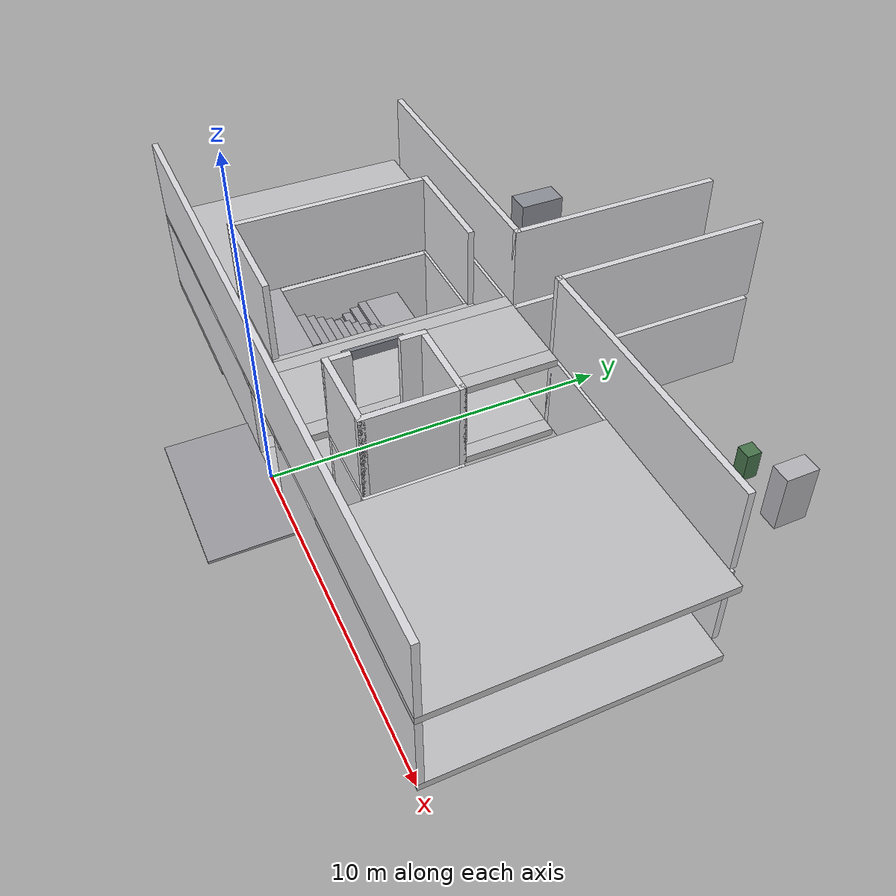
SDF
<sdf version="1.7">
 <model name="generated_building">
  <static>true</static>
  <link name="entrance_apron">
   <pose>0.0000 -1.2000 0.0400 0.0000 0.0000 0.0000</pose>
   <collision name="entrance_apron_collision">
    <geometry><box><size>4.5000 2.4000 0.0800</size></box></geometry>
   </collision>
   <visual name="entrance_apron_visual">
    <geometry><box><size>4.5000 2.4000 0.0800</size></box></geometry>
    <material><ambient>0.62 0.62 0.64 1</ambient><diffuse>0.62 0.62 0.64 1</diffuse></material>
   </visual>
   <gravity>false</gravity>
  </link>
  <link name="slab_floor_0_1">
   <pose>-7.4700 3.9250 -0.1100 0.0000 0.0000 0.0000</pose>
   <collision name="slab_floor_0_1_collision">
    <geometry><box><size>5.0600 7.8500 0.2200</size></box></geometry>
   </collision>
   <visual name="slab_floor_0_1_visual">
    <geometry><box><size>5.0600 7.8500 0.2200</size></box></geometry>
    <material><ambient>0.76 0.76 0.77 1</ambient><diffuse>0.76 0.76 0.77 1</diffuse></material>
   </visual>
   <gravity>false</gravity>
  </link>
  <link name="slab_floor_0_2">
   <pose>-1.3300 3.9250 -0.1100 0.0000 0.0000 0.0000</pose>
   <collision name="slab_floor_0_2_collision">
    <geometry><box><size>0.4600 7.8500 0.2200</size></box></geometry>
   </collision>
   <visual name="slab_floor_0_2_visual">
    <geometry><box><size>0.4600 7.8500 0.2200</size></box></geometry>
    <material><ambient>0.76 0.76 0.77 1</ambient><diffuse>0.76 0.76 0.77 1</diffuse></material>
   </visual>
   <gravity>false</gravity>
  </link>
  <link name="slab_floor_0_3">
   <pose>0.0000 3.9250 -0.1100 0.0000 0.0000 0.0000</pose>
   <collision name="slab_floor_0_3_collision">
    <geometry><box><size>2.2000 7.8500 0.2200</size></box></geometry>
   </collision>
   <visual name="slab_floor_0_3_visual">
    <geometry><box><size>2.2000 7.8500 0.2200</size></box></geometry>
    <material><ambient>0.76 0.76 0.77 1</ambient><diffuse>0.76 0.76 0.77 1</diffuse></material>
   </visual>
   <gravity>false</gravity>
  </link>
  <link name="slab_floor_0_4">
   <pose>1.3300 3.9250 -0.1100 0.0000 0.0000 0.0000</pose>
   <collision name="slab_floor_0_4_collision">
    <geometry><box><size>0.4600 7.8500 0.2200</size></box></geometry>
   </collision>
   <visual name="slab_floor_0_4_visual">
    <geometry><box><size>0.4600 7.8500 0.2200</size></box></geometry>
    <material><ambient>0.76 0.76 0.77 1</ambient><diffuse>0.76 0.76 0.77 1</diffuse></material>
   </visual>
   <gravity>false</gravity>
  </link>
  <link name="slab_floor_0_5">
   <pose>7.0700 3.9250 -0.1100 0.0000 0.0000 0.0000</pose>
   <collision name="slab_floor_0_5_collision">
    <geometry><box><size>5.8600 7.8500 0.2200</size></box></geometry>
   </collision>
   <visual name="slab_floor_0_5_visual">
    <geometry><box><size>5.8600 7.8500 0.2200</size></box></geometry>
    <material><ambient>0.76 0.76 0.77 1</ambient><diffuse>0.76 0.76 0.77 1</diffuse></material>
   </visual>
   <gravity>false</gravity>
  </link>
  <link name="stair_edge_infill_floor_0">
   <pose>-1.6500 3.8500 -0.1100 0.0000 0.0000 0.0000</pose>
   <collision name="stair_edge_infill_floor_0_collision">
    <geometry><box><size>0.1800 6.0000 0.2200</size></box></geometry>
   </collision>
   <visual name="stair_edge_infill_floor_0_visual">
    <geometry><box><size>0.1800 6.0000 0.2200</size></box></geometry>
    <material><ambient>0.76 0.76 0.77 1</ambient><diffuse>0.76 0.76 0.77 1</diffuse></material>
   </visual>
   <gravity>false</gravity>
  </link>
  <link name="exterior_south_entrance_left">
   <pose>-5.5100 0.0900 1.2250 0.0000 0.0000 0.0000</pose>
   <collision name="exterior_south_entrance_left_collision">
    <geometry><box><size>8.9800 0.1800 2.4500</size></box></geometry>
   </collision>
   <visual name="exterior_south_entrance_left_visual">
    <geometry><box><size>8.9800 0.1800 2.4500</size></box></geometry>
    <material><ambient>0.86 0.86 0.88 1</ambient><diffuse>0.86 0.86 0.88 1</diffuse></material>
   </visual>
   <gravity>false</gravity>
  </link>
  <link name="exterior_south_entrance_right">
   <pose>5.5100 0.0900 1.2250 0.0000 0.0000 0.0000</pose>
   <collision name="exterior_south_entrance_right_collision">
    <geometry><box><size>8.9800 0.1800 2.4500</size></box></geometry>
   </collision>
   <visual name="exterior_south_entrance_right_visual">
    <geometry><box><size>8.9800 0.1800 2.4500</size></box></geometry>
    <material><ambient>0.86 0.86 0.88 1</ambient><diffuse>0.86 0.86 0.88 1</diffuse></material>
   </visual>
   <gravity>false</gravity>
  </link>
  <link name="floor_0_room_0_corridor_wall_lower">
   <pose>-1.1900 11.0575 1.2250 0.0000 0.0000 0.0000</pose>
   <collision name="floor_0_room_0_corridor_wall_lower_collision">
    <geometry><box><size>0.1800 6.4150 2.4500</size></box></geometry>
   </collision>
   <visual name="floor_0_room_0_corridor_wall_lower_visual">
    <geometry><box><size>0.1800 6.4150 2.4500</size></box></geometry>
    <material><ambient>0.86 0.86 0.88 1</ambient><diffuse>0.86 0.86 0.88 1</diffuse></material>
   </visual>
   <gravity>false</gravity>
  </link>
  <link name="floor_0_room_0_south_wall">
   <pose>-5.3000 7.9400 1.2250 0.0000 0.0000 0.0000</pose>
   <collision name="floor_0_room_0_south_wall_collision">
    <geometry><box><size>8.4000 0.1800 2.4500</size></box></geometry>
   </collision>
   <visual name="floor_0_room_0_south_wall_visual">
    <geometry><box><size>8.4000 0.1800 2.4500</size></box></geometry>
    <material><ambient>0.86 0.86 0.88 1</ambient><diffuse>0.86 0.86 0.88 1</diffuse></material>
   </visual>
   <gravity>false</gravity>
  </link>
  <link name="floor_0_room_1_corridor_wall_lower">
   <pose>1.1900 11.0575 1.2250 0.0000 0.0000 0.0000</pose>
   <collision name="floor_0_room_1_corridor_wall_lower_collision">
    <geometry><box><size>0.1800 6.4150 2.4500</size></box></geometry>
   </collision>
   <visual name="floor_0_room_1_corridor_wall_lower_visual">
    <geometry><box><size>0.1800 6.4150 2.4500</size></box></geometry>
    <material><ambient>0.86 0.86 0.88 1</ambient><diffuse>0.86 0.86 0.88 1</diffuse></material>
   </visual>
   <gravity>false</gravity>
  </link>
  <link name="floor_0_room_1_south_wall">
   <pose>5.3000 7.9400 1.2250 0.0000 0.0000 0.0000</pose>
   <collision name="floor_0_room_1_south_wall_collision">
    <geometry><box><size>8.4000 0.1800 2.4500</size></box></geometry>
   </collision>
   <visual name="floor_0_room_1_south_wall_visual">
    <geometry><box><size>8.4000 0.1800 2.4500</size></box></geometry>
    <material><ambient>0.86 0.86 0.88 1</ambient><diffuse>0.86 0.86 0.88 1</diffuse></material>
   </visual>
   <gravity>false</gravity>
  </link>
  <link name="stair_core_floor_0_west">
   <pose>-4.7600 3.8500 1.2250 0.0000 0.0000 0.0000</pose>
   <collision name="stair_core_floor_0_west_collision">
    <geometry><box><size>0.1800 6.0000 2.4500</size></box></geometry>
   </collision>
   <visual name="stair_core_floor_0_west_visual">
    <geometry><box><size>0.1800 6.0000 2.4500</size></box></geometry>
    <material><ambient>0.86 0.86 0.88 1</ambient><diffuse>0.86 0.86 0.88 1</diffuse></material>
   </visual>
   <gravity>false</gravity>
  </link>
  <link name="stair_core_floor_0_south">
   <pose>-3.2500 0.9400 1.2250 0.0000 0.0000 0.0000</pose>
   <collision name="stair_core_floor_0_south_collision">
    <geometry><box><size>3.2000 0.1800 2.4500</size></box></geometry>
   </collision>
   <visual name="stair_core_floor_0_south_visual">
    <geometry><box><size>3.2000 0.1800 2.4500</size></box></geometry>
    <material><ambient>0.86 0.86 0.88 1</ambient><diffuse>0.86 0.86 0.88 1</diffuse></material>
   </visual>
   <gravity>false</gravity>
  </link>
  <link name="stair_core_floor_0_north">
   <pose>-3.2500 6.7600 1.2250 0.0000 0.0000 0.0000</pose>
   <collision name="stair_core_floor_0_north_collision">
    <geometry><box><size>3.2000 0.1800 2.4500</size></box></geometry>
   </collision>
   <visual name="stair_core_floor_0_north_visual">
    <geometry><box><size>3.2000 0.1800 2.4500</size></box></geometry>
    <material><ambient>0.86 0.86 0.88 1</ambient><diffuse>0.86 0.86 0.88 1</diffuse></material>
   </visual>
   <gravity>false</gravity>
  </link>
  <link name="elevator_core_floor_0_west_lower">
   <pose>1.7400 1.6150 1.2250 0.0000 0.0000 0.0000</pose>
   <collision name="elevator_core_floor_0_west_lower_collision">
    <geometry><box><size>0.1800 0.7300 2.4500</size></box></geometry>
   </collision>
   <visual name="elevator_core_floor_0_west_lower_visual">
    <geometry><box><size>0.1800 0.7300 2.4500</size></box></geometry>
    <material><ambient>0.86 0.86 0.88 1</ambient><diffuse>0.86 0.86 0.88 1</diffuse></material>
   </visual>
   <gravity>false</gravity>
  </link>
  <link name="elevator_core_floor_0_west_upper">
   <pose>1.7400 3.5850 1.2250 0.0000 0.0000 0.0000</pose>
   <collision name="elevator_core_floor_0_west_upper_collision">
    <geometry><box><size>0.1800 0.7300 2.4500</size></box></geometry>
   </collision>
   <visual name="elevator_core_floor_0_west_upper_visual">
    <geometry><box><size>0.1800 0.7300 2.4500</size></box></geometry>
    <material><ambient>0.86 0.86 0.88 1</ambient><diffuse>0.86 0.86 0.88 1</diffuse></material>
   </visual>
   <gravity>false</gravity>
  </link>
  <link name="elevator_core_floor_0_east">
   <pose>3.9600 2.6000 1.2250 0.0000 0.0000 0.0000</pose>
   <collision name="elevator_core_floor_0_east_collision">
    <geometry><box><size>0.1800 2.7000 2.4500</size></box></geometry>
   </collision>
   <visual name="elevator_core_floor_0_east_visual">
    <geometry><box><size>0.1800 2.7000 2.4500</size></box></geometry>
    <material><ambient>0.86 0.86 0.88 1</ambient><diffuse>0.86 0.86 0.88 1</diffuse></material>
   </visual>
   <gravity>false</gravity>
  </link>
  <link name="elevator_core_floor_0_south">
   <pose>2.8500 1.3400 1.2250 0.0000 0.0000 0.0000</pose>
   <collision name="elevator_core_floor_0_south_collision">
    <geometry><box><size>2.4000 0.1800 2.4500</size></box></geometry>
   </collision>
   <visual name="elevator_core_floor_0_south_visual">
    <geometry><box><size>2.4000 0.1800 2.4500</size></box></geometry>
    <material><ambient>0.86 0.86 0.88 1</ambient><diffuse>0.86 0.86 0.88 1</diffuse></material>
   </visual>
   <gravity>false</gravity>
  </link>
  <link name="elevator_core_floor_0_north">
   <pose>2.8500 3.8600 1.2250 0.0000 0.0000 0.0000</pose>
   <collision name="elevator_core_floor_0_north_collision">
    <geometry><box><size>2.4000 0.1800 2.4500</size></box></geometry>
   </collision>
   <visual name="elevator_core_floor_0_north_visual">
    <geometry><box><size>2.4000 0.1800 2.4500</size></box></geometry>
    <material><ambient>0.86 0.86 0.88 1</ambient><diffuse>0.86 0.86 0.88 1</diffuse></material>
   </visual>
   <gravity>false</gravity>
  </link>
  <link name="elevator_threshold_floor_0">
   <pose>1.5400 2.6000 0.0300 0.0000 0.0000 0.0000</pose>
   <collision name="elevator_threshold_floor_0_collision">
    <geometry><box><size>0.2200 1.5000 0.0600</size></box></geometry>
   </collision>
   <visual name="elevator_threshold_floor_0_visual">
    <geometry><box><size>0.2200 1.5000 0.0600</size></box></geometry>
    <material><ambient>0.50 0.51 0.54 1</ambient><diffuse>0.50 0.51 0.54 1</diffuse></material>
   </visual>
   <gravity>false</gravity>
  </link>
  <link name="elevator_sill_infill_floor_0">
   <pose>1.6750 2.6000 -0.1100 0.0000 0.0000 0.0000</pose>
   <collision name="elevator_sill_infill_floor_0_collision">
    <geometry><box><size>0.0500 2.5200 0.2200</size></box></geometry>
   </collision>
   <visual name="elevator_sill_infill_floor_0_visual">
    <geometry><box><size>0.0500 2.5200 0.2200</size></box></geometry>
    <material><ambient>0.72 0.72 0.73 1</ambient><diffuse>0.72 0.72 0.73 1</diffuse></material>
   </visual>
   <gravity>false</gravity>
  </link>
  <link name="elevator_header_floor_0">
   <pose>1.5900 2.6000 2.2600 0.0000 0.0000 0.0000</pose>
   <collision name="elevator_header_floor_0_collision">
    <geometry><box><size>0.1200 1.6000 0.2800</size></box></geometry>
   </collision>
   <visual name="elevator_header_floor_0_visual">
    <geometry><box><size>0.1200 1.6000 0.2800</size></box></geometry>
    <material><ambient>0.50 0.51 0.54 1</ambient><diffuse>0.50 0.51 0.54 1</diffuse></material>
   </visual>
   <gravity>false</gravity>
  </link>
  <link name="elevator_jamb_left_floor_0">
   <pose>1.5900 1.8500 1.1000 0.0000 0.0000 0.0000</pose>
   <collision name="elevator_jamb_left_floor_0_collision">
    <geometry><box><size>0.1200 0.1000 2.2000</size></box></geometry>
   </collision>
   <visual name="elevator_jamb_left_floor_0_visual">
    <geometry><box><size>0.1200 0.1000 2.2000</size></box></geometry>
    <material><ambient>0.50 0.51 0.54 1</ambient><diffuse>0.50 0.51 0.54 1</diffuse></material>
   </visual>
   <gravity>false</gravity>
  </link>
  <link name="elevator_jamb_right_floor_0">
   <pose>1.5900 3.3500 1.1000 0.0000 0.0000 0.0000</pose>
   <collision name="elevator_jamb_right_floor_0_collision">
    <geometry><box><size>0.1200 0.1000 2.2000</size></box></geometry>
   </collision>
   <visual name="elevator_jamb_right_floor_0_visual">
    <geometry><box><size>0.1200 0.1000 2.2000</size></box></geometry>
    <material><ambient>0.50 0.51 0.54 1</ambient><diffuse>0.50 0.51 0.54 1</diffuse></material>
   </visual>
   <gravity>false</gravity>
  </link>
  <link name="elevator_call_panel_floor_0">
   <pose>1.5700 3.5800 1.2000 0.0000 0.0000 0.0000</pose>
   <collision name="elevator_call_panel_floor_0_collision">
    <geometry><box><size>0.0800 0.2200 0.3200</size></box></geometry>
   </collision>
   <visual name="elevator_call_panel_floor_0_visual">
    <geometry><box><size>0.0800 0.2200 0.3200</size></box></geometry>
    <material><ambient>0.20 0.20 0.24 1</ambient><diffuse>0.20 0.20 0.24 1</diffuse></material>
   </visual>
   <gravity>false</gravity>
  </link>
  <link name="floor_0_room_0_rack_c">
   <pose>-7.0000 11.8075 0.9000 0.0000 0.0000 0.0000</pose>
   <collision name="floor_0_room_0_rack_c_collision">
    <geometry><box><size>0.8000 1.5000 1.8000</size></box></geometry>
   </collision>
   <visual name="floor_0_room_0_rack_c_visual">
    <geometry><box><size>0.8000 1.5000 1.8000</size></box></geometry>
    <material><ambient>0.56 0.57 0.60 1</ambient><diffuse>0.56 0.57 0.60 1</diffuse></material>
   </visual>
   <gravity>false</gravity>
  </link>
  <link name="floor_0_room_0_pallet">
   <pose>-3.6000 11.8075 0.1200 0.0000 0.0000 0.0000</pose>
   <collision name="floor_0_room_0_pallet_collision">
    <geometry><box><size>1.0000 1.0000 0.2400</size></box></geometry>
   </collision>
   <visual name="floor_0_room_0_pallet_visual">
    <geometry><box><size>1.0000 1.0000 0.2400</size></box></geometry>
    <material><ambient>0.56 0.44 0.28 1</ambient><diffuse>0.56 0.44 0.28 1</diffuse></material>
   </visual>
   <gravity>false</gravity>
  </link>
  <link name="floor_0_room_1_cabinet">
   <pose>7.0000 11.8075 0.9000 0.0000 0.0000 0.0000</pose>
   <collision name="floor_0_room_1_cabinet_collision">
    <geometry><box><size>0.6000 1.0000 1.8000</size></box></geometry>
   </collision>
   <visual name="floor_0_room_1_cabinet_visual">
    <geometry><box><size>0.6000 1.0000 1.8000</size></box></geometry>
    <material><ambient>0.72 0.72 0.74 1</ambient><diffuse>0.72 0.72 0.74 1</diffuse></material>
   </visual>
   <gravity>false</gravity>
  </link>
  <link name="floor_0_room_1_planter">
   <pose>5.3000 11.8075 0.4500 0.0000 0.0000 0.0000</pose>
   <collision name="floor_0_room_1_planter_collision">
    <geometry><box><size>0.4500 0.4500 0.9000</size></box></geometry>
   </collision>
   <visual name="floor_0_room_1_planter_visual">
    <geometry><box><size>0.4500 0.4500 0.9000</size></box></geometry>
    <material><ambient>0.28 0.46 0.30 1</ambient><diffuse>0.28 0.46 0.30 1</diffuse></material>
   </visual>
   <gravity>false</gravity>
  </link>
  <link name="slab_floor_1_1">
   <pose>-7.4700 3.9250 2.4900 0.0000 0.0000 0.0000</pose>
   <collision name="slab_floor_1_1_collision">
    <geometry><box><size>5.0600 7.8500 0.2200</size></box></geometry>
   </collision>
   <visual name="slab_floor_1_1_visual">
    <geometry><box><size>5.0600 7.8500 0.2200</size></box></geometry>
    <material><ambient>0.76 0.76 0.77 1</ambient><diffuse>0.76 0.76 0.77 1</diffuse></material>
   </visual>
   <gravity>false</gravity>
  </link>
  <link name="slab_floor_1_2">
   <pose>-1.3300 3.9250 2.4900 0.0000 0.0000 0.0000</pose>
   <collision name="slab_floor_1_2_collision">
    <geometry><box><size>0.4600 7.8500 0.2200</size></box></geometry>
   </collision>
   <visual name="slab_floor_1_2_visual">
    <geometry><box><size>0.4600 7.8500 0.2200</size></box></geometry>
    <material><ambient>0.76 0.76 0.77 1</ambient><diffuse>0.76 0.76 0.77 1</diffuse></material>
   </visual>
   <gravity>false</gravity>
  </link>
  <link name="slab_floor_1_3">
   <pose>0.0000 3.9250 2.4900 0.0000 0.0000 0.0000</pose>
   <collision name="slab_floor_1_3_collision">
    <geometry><box><size>2.2000 7.8500 0.2200</size></box></geometry>
   </collision>
   <visual name="slab_floor_1_3_visual">
    <geometry><box><size>2.2000 7.8500 0.2200</size></box></geometry>
    <material><ambient>0.76 0.76 0.77 1</ambient><diffuse>0.76 0.76 0.77 1</diffuse></material>
   </visual>
   <gravity>false</gravity>
  </link>
  <link name="slab_floor_1_4">
   <pose>1.3300 3.9250 2.4900 0.0000 0.0000 0.0000</pose>
   <collision name="slab_floor_1_4_collision">
    <geometry><box><size>0.4600 7.8500 0.2200</size></box></geometry>
   </collision>
   <visual name="slab_floor_1_4_visual">
    <geometry><box><size>0.4600 7.8500 0.2200</size></box></geometry>
    <material><ambient>0.76 0.76 0.77 1</ambient><diffuse>0.76 0.76 0.77 1</diffuse></material>
   </visual>
   <gravity>false</gravity>
  </link>
  <link name="slab_floor_1_5">
   <pose>7.0700 3.9250 2.4900 0.0000 0.0000 0.0000</pose>
   <collision name="slab_floor_1_5_collision">
    <geometry><box><size>5.8600 7.8500 0.2200</size></box></geometry>
   </collision>
   <visual name="slab_floor_1_5_visual">
    <geometry><box><size>5.8600 7.8500 0.2200</size></box></geometry>
    <material><ambient>0.76 0.76 0.77 1</ambient><diffuse>0.76 0.76 0.77 1</diffuse></material>
   </visual>
   <gravity>false</gravity>
  </link>
  <link name="stair_edge_infill_floor_1">
   <pose>-1.6500 3.8500 2.4900 0.0000 0.0000 0.0000</pose>
   <collision name="stair_edge_infill_floor_1_collision">
    <geometry><box><size>0.1800 6.0000 0.2200</size></box></geometry>
   </collision>
   <visual name="stair_edge_infill_floor_1_visual">
    <geometry><box><size>0.1800 6.0000 0.2200</size></box></geometry>
    <material><ambient>0.76 0.76 0.77 1</ambient><diffuse>0.76 0.76 0.77 1</diffuse></material>
   </visual>
   <gravity>false</gravity>
  </link>
  <link name="exterior_south_floor_1">
   <pose>0.0000 0.0900 3.8250 0.0000 0.0000 0.0000</pose>
   <collision name="exterior_south_floor_1_collision">
    <geometry><box><size>20.0000 0.1800 2.4500</size></box></geometry>
   </collision>
   <visual name="exterior_south_floor_1_visual">
    <geometry><box><size>20.0000 0.1800 2.4500</size></box></geometry>
    <material><ambient>0.86 0.86 0.88 1</ambient><diffuse>0.86 0.86 0.88 1</diffuse></material>
   </visual>
   <gravity>false</gravity>
  </link>
  <link name="floor_1_room_0_corridor_wall_lower">
   <pose>-1.1900 11.0575 3.8250 0.0000 0.0000 0.0000</pose>
   <collision name="floor_1_room_0_corridor_wall_lower_collision">
    <geometry><box><size>0.1800 6.4150 2.4500</size></box></geometry>
   </collision>
   <visual name="floor_1_room_0_corridor_wall_lower_visual">
    <geometry><box><size>0.1800 6.4150 2.4500</size></box></geometry>
    <material><ambient>0.86 0.86 0.88 1</ambient><diffuse>0.86 0.86 0.88 1</diffuse></material>
   </visual>
   <gravity>false</gravity>
  </link>
  <link name="floor_1_room_0_south_wall">
   <pose>-5.3000 7.9400 3.8250 0.0000 0.0000 0.0000</pose>
   <collision name="floor_1_room_0_south_wall_collision">
    <geometry><box><size>8.4000 0.1800 2.4500</size></box></geometry>
   </collision>
   <visual name="floor_1_room_0_south_wall_visual">
    <geometry><box><size>8.4000 0.1800 2.4500</size></box></geometry>
    <material><ambient>0.86 0.86 0.88 1</ambient><diffuse>0.86 0.86 0.88 1</diffuse></material>
   </visual>
   <gravity>false</gravity>
  </link>
  <link name="floor_1_room_1_corridor_wall_lower">
   <pose>1.1900 11.0575 3.8250 0.0000 0.0000 0.0000</pose>
   <collision name="floor_1_room_1_corridor_wall_lower_collision">
    <geometry><box><size>0.1800 6.4150 2.4500</size></box></geometry>
   </collision>
   <visual name="floor_1_room_1_corridor_wall_lower_visual">
    <geometry><box><size>0.1800 6.4150 2.4500</size></box></geometry>
    <material><ambient>0.86 0.86 0.88 1</ambient><diffuse>0.86 0.86 0.88 1</diffuse></material>
   </visual>
   <gravity>false</gravity>
  </link>
  <link name="floor_1_room_1_south_wall">
   <pose>5.3000 7.9400 3.8250 0.0000 0.0000 0.0000</pose>
   <collision name="floor_1_room_1_south_wall_collision">
    <geometry><box><size>8.4000 0.1800 2.4500</size></box></geometry>
   </collision>
   <visual name="floor_1_room_1_south_wall_visual">
    <geometry><box><size>8.4000 0.1800 2.4500</size></box></geometry>
    <material><ambient>0.86 0.86 0.88 1</ambient><diffuse>0.86 0.86 0.88 1</diffuse></material>
   </visual>
   <gravity>false</gravity>
  </link>
  <link name="stair_core_floor_1_west">
   <pose>-4.7600 3.8500 3.8250 0.0000 0.0000 0.0000</pose>
   <collision name="stair_core_floor_1_west_collision">
    <geometry><box><size>0.1800 6.0000 2.4500</size></box></geometry>
   </collision>
   <visual name="stair_core_floor_1_west_visual">
    <geometry><box><size>0.1800 6.0000 2.4500</size></box></geometry>
    <material><ambient>0.86 0.86 0.88 1</ambient><diffuse>0.86 0.86 0.88 1</diffuse></material>
   </visual>
   <gravity>false</gravity>
  </link>
  <link name="stair_core_floor_1_south">
   <pose>-3.2500 0.9400 3.8250 0.0000 0.0000 0.0000</pose>
   <collision name="stair_core_floor_1_south_collision">
    <geometry><box><size>3.2000 0.1800 2.4500</size></box></geometry>
   </collision>
   <visual name="stair_core_floor_1_south_visual">
    <geometry><box><size>3.2000 0.1800 2.4500</size></box></geometry>
    <material><ambient>0.86 0.86 0.88 1</ambient><diffuse>0.86 0.86 0.88 1</diffuse></material>
   </visual>
   <gravity>false</gravity>
  </link>
  <link name="stair_core_floor_1_north">
   <pose>-3.2500 6.7600 3.8250 0.0000 0.0000 0.0000</pose>
   <collision name="stair_core_floor_1_north_collision">
    <geometry><box><size>3.2000 0.1800 2.4500</size></box></geometry>
   </collision>
   <visual name="stair_core_floor_1_north_visual">
    <geometry><box><size>3.2000 0.1800 2.4500</size></box></geometry>
    <material><ambient>0.86 0.86 0.88 1</ambient><diffuse>0.86 0.86 0.88 1</diffuse></material>
   </visual>
   <gravity>false</gravity>
  </link>
  <link name="elevator_core_floor_1_west_lower">
   <pose>1.7400 1.6150 3.8250 0.0000 0.0000 0.0000</pose>
   <collision name="elevator_core_floor_1_west_lower_collision">
    <geometry><box><size>0.1800 0.7300 2.4500</size></box></geometry>
   </collision>
   <visual name="elevator_core_floor_1_west_lower_visual">
    <geometry><box><size>0.1800 0.7300 2.4500</size></box></geometry>
    <material><ambient>0.86 0.86 0.88 1</ambient><diffuse>0.86 0.86 0.88 1</diffuse></material>
   </visual>
   <gravity>false</gravity>
  </link>
  <link name="elevator_core_floor_1_west_upper">
   <pose>1.7400 3.5850 3.8250 0.0000 0.0000 0.0000</pose>
   <collision name="elevator_core_floor_1_west_upper_collision">
    <geometry><box><size>0.1800 0.7300 2.4500</size></box></geometry>
   </collision>
   <visual name="elevator_core_floor_1_west_upper_visual">
    <geometry><box><size>0.1800 0.7300 2.4500</size></box></geometry>
    <material><ambient>0.86 0.86 0.88 1</ambient><diffuse>0.86 0.86 0.88 1</diffuse></material>
   </visual>
   <gravity>false</gravity>
  </link>
  <link name="elevator_core_floor_1_east">
   <pose>3.9600 2.6000 3.8250 0.0000 0.0000 0.0000</pose>
   <collision name="elevator_core_floor_1_east_collision">
    <geometry><box><size>0.1800 2.7000 2.4500</size></box></geometry>
   </collision>
   <visual name="elevator_core_floor_1_east_visual">
    <geometry><box><size>0.1800 2.7000 2.4500</size></box></geometry>
    <material><ambient>0.86 0.86 0.88 1</ambient><diffuse>0.86 0.86 0.88 1</diffuse></material>
   </visual>
   <gravity>false</gravity>
  </link>
  <link name="elevator_core_floor_1_south">
   <pose>2.8500 1.3400 3.8250 0.0000 0.0000 0.0000</pose>
   <collision name="elevator_core_floor_1_south_collision">
    <geometry><box><size>2.4000 0.1800 2.4500</size></box></geometry>
   </collision>
   <visual name="elevator_core_floor_1_south_visual">
    <geometry><box><size>2.4000 0.1800 2.4500</size></box></geometry>
    <material><ambient>0.86 0.86 0.88 1</ambient><diffuse>0.86 0.86 0.88 1</diffuse></material>
   </visual>
   <gravity>false</gravity>
  </link>
  <link name="elevator_core_floor_1_north">
   <pose>2.8500 3.8600 3.8250 0.0000 0.0000 0.0000</pose>
   <collision name="elevator_core_floor_1_north_collision">
    <geometry><box><size>2.4000 0.1800 2.4500</size></box></geometry>
   </collision>
   <visual name="elevator_core_floor_1_north_visual">
    <geometry><box><size>2.4000 0.1800 2.4500</size></box></geometry>
    <material><ambient>0.86 0.86 0.88 1</ambient><diffuse>0.86 0.86 0.88 1</diffuse></material>
   </visual>
   <gravity>false</gravity>
  </link>
  <link name="elevator_threshold_floor_1">
   <pose>1.5400 2.6000 2.6300 0.0000 0.0000 0.0000</pose>
   <collision name="elevator_threshold_floor_1_collision">
    <geometry><box><size>0.2200 1.5000 0.0600</size></box></geometry>
   </collision>
   <visual name="elevator_threshold_floor_1_visual">
    <geometry><box><size>0.2200 1.5000 0.0600</size></box></geometry>
    <material><ambient>0.50 0.51 0.54 1</ambient><diffuse>0.50 0.51 0.54 1</diffuse></material>
   </visual>
   <gravity>false</gravity>
  </link>
  <link name="elevator_sill_infill_floor_1">
   <pose>1.6750 2.6000 2.4900 0.0000 0.0000 0.0000</pose>
   <collision name="elevator_sill_infill_floor_1_collision">
    <geometry><box><size>0.0500 2.5200 0.2200</size></box></geometry>
   </collision>
   <visual name="elevator_sill_infill_floor_1_visual">
    <geometry><box><size>0.0500 2.5200 0.2200</size></box></geometry>
    <material><ambient>0.72 0.72 0.73 1</ambient><diffuse>0.72 0.72 0.73 1</diffuse></material>
   </visual>
   <gravity>false</gravity>
  </link>
  <link name="elevator_header_floor_1">
   <pose>1.5900 2.6000 4.8600 0.0000 0.0000 0.0000</pose>
   <collision name="elevator_header_floor_1_collision">
    <geometry><box><size>0.1200 1.6000 0.2800</size></box></geometry>
   </collision>
   <visual name="elevator_header_floor_1_visual">
    <geometry><box><size>0.1200 1.6000 0.2800</size></box></geometry>
    <material><ambient>0.50 0.51 0.54 1</ambient><diffuse>0.50 0.51 0.54 1</diffuse></material>
   </visual>
   <gravity>false</gravity>
  </link>
  <link name="elevator_jamb_left_floor_1">
   <pose>1.5900 1.8500 3.7000 0.0000 0.0000 0.0000</pose>
   <collision name="elevator_jamb_left_floor_1_collision">
    <geometry><box><size>0.1200 0.1000 2.2000</size></box></geometry>
   </collision>
   <visual name="elevator_jamb_left_floor_1_visual">
    <geometry><box><size>0.1200 0.1000 2.2000</size></box></geometry>
    <material><ambient>0.50 0.51 0.54 1</ambient><diffuse>0.50 0.51 0.54 1</diffuse></material>
   </visual>
   <gravity>false</gravity>
  </link>
  <link name="elevator_jamb_right_floor_1">
   <pose>1.5900 3.3500 3.7000 0.0000 0.0000 0.0000</pose>
   <collision name="elevator_jamb_right_floor_1_collision">
    <geometry><box><size>0.1200 0.1000 2.2000</size></box></geometry>
   </collision>
   <visual name="elevator_jamb_right_floor_1_visual">
    <geometry><box><size>0.1200 0.1000 2.2000</size></box></geometry>
    <material><ambient>0.50 0.51 0.54 1</ambient><diffuse>0.50 0.51 0.54 1</diffuse></material>
   </visual>
   <gravity>false</gravity>
  </link>
  <link name="elevator_call_panel_floor_1">
   <pose>1.5700 3.5800 3.8000 0.0000 0.0000 0.0000</pose>
   <collision name="elevator_call_panel_floor_1_collision">
    <geometry><box><size>0.0800 0.2200 0.3200</size></box></geometry>
   </collision>
   <visual name="elevator_call_panel_floor_1_visual">
    <geometry><box><size>0.0800 0.2200 0.3200</size></box></geometry>
    <material><ambient>0.20 0.20 0.24 1</ambient><diffuse>0.20 0.20 0.24 1</diffuse></material>
   </visual>
   <gravity>false</gravity>
  </link>
  <link name="stair_floor_landing_floor_0">
   <pose>-3.2500 1.5500 -0.0900 0.0000 0.0000 0.0000</pose>
   <collision name="stair_floor_landing_floor_0_collision">
    <geometry><box><size>3.0200 1.0000 0.1800</size></box></geometry>
   </collision>
   <visual name="stair_floor_landing_floor_0_visual">
    <geometry><box><size>3.0200 1.0000 0.1800</size></box></geometry>
    <material><ambient>0.68 0.68 0.70 1</ambient><diffuse>0.68 0.68 0.70 1</diffuse></material>
   </visual>
   <gravity>false</gravity>
  </link>
  <link name="stair_floor_landing_floor_1">
   <pose>-3.2500 1.5500 2.5100 0.0000 0.0000 0.0000</pose>
   <collision name="stair_floor_landing_floor_1_collision">
    <geometry><box><size>3.0200 1.0000 0.1800</size></box></geometry>
   </collision>
   <visual name="stair_floor_landing_floor_1_visual">
    <geometry><box><size>3.0200 1.0000 0.1800</size></box></geometry>
    <material><ambient>0.68 0.68 0.70 1</ambient><diffuse>0.68 0.68 0.70 1</diffuse></material>
   </visual>
   <gravity>false</gravity>
  </link>
  <link name="stair_flight_a_floor_0_step_0">
   <pose>-4.0150 2.1800 0.0650 0.0000 0.0000 0.0000</pose>
   <collision name="stair_flight_a_floor_0_step_0_collision">
    <geometry><box><size>1.4300 0.2600 0.1300</size></box></geometry>
   </collision>
   <visual name="stair_flight_a_floor_0_step_0_visual">
    <geometry><box><size>1.4300 0.2600 0.1300</size></box></geometry>
    <material><ambient>0.64 0.64 0.66 1</ambient><diffuse>0.64 0.64 0.66 1</diffuse></material>
   </visual>
   <gravity>false</gravity>
  </link>
  <link name="stair_flight_a_floor_0_step_1">
   <pose>-4.0150 2.4400 0.1950 0.0000 0.0000 0.0000</pose>
   <collision name="stair_flight_a_floor_0_step_1_collision">
    <geometry><box><size>1.4300 0.2600 0.1300</size></box></geometry>
   </collision>
   <visual name="stair_flight_a_floor_0_step_1_visual">
    <geometry><box><size>1.4300 0.2600 0.1300</size></box></geometry>
    <material><ambient>0.64 0.64 0.66 1</ambient><diffuse>0.64 0.64 0.66 1</diffuse></material>
   </visual>
   <gravity>false</gravity>
  </link>
  <link name="stair_flight_a_floor_0_step_2">
   <pose>-4.0150 2.7000 0.3250 0.0000 0.0000 0.0000</pose>
   <collision name="stair_flight_a_floor_0_step_2_collision">
    <geometry><box><size>1.4300 0.2600 0.1300</size></box></geometry>
   </collision>
   <visual name="stair_flight_a_floor_0_step_2_visual">
    <geometry><box><size>1.4300 0.2600 0.1300</size></box></geometry>
    <material><ambient>0.64 0.64 0.66 1</ambient><diffuse>0.64 0.64 0.66 1</diffuse></material>
   </visual>
   <gravity>false</gravity>
  </link>
  <link name="stair_flight_a_floor_0_step_3">
   <pose>-4.0150 2.9600 0.4550 0.0000 0.0000 0.0000</pose>
   <collision name="stair_flight_a_floor_0_step_3_collision">
    <geometry><box><size>1.4300 0.2600 0.1300</size></box></geometry>
   </collision>
   <visual name="stair_flight_a_floor_0_step_3_visual">
    <geometry><box><size>1.4300 0.2600 0.1300</size></box></geometry>
    <material><ambient>0.64 0.64 0.66 1</ambient><diffuse>0.64 0.64 0.66 1</diffuse></material>
   </visual>
   <gravity>false</gravity>
  </link>
  <link name="stair_flight_a_floor_0_step_4">
   <pose>-4.0150 3.2200 0.5850 0.0000 0.0000 0.0000</pose>
   <collision name="stair_flight_a_floor_0_step_4_collision">
    <geometry><box><size>1.4300 0.2600 0.1300</size></box></geometry>
   </collision>
   <visual name="stair_flight_a_floor_0_step_4_visual">
    <geometry><box><size>1.4300 0.2600 0.1300</size></box></geometry>
    <material><ambient>0.64 0.64 0.66 1</ambient><diffuse>0.64 0.64 0.66 1</diffuse></material>
   </visual>
   <gravity>false</gravity>
  </link>
  <link name="stair_flight_a_floor_0_step_5">
   <pose>-4.0150 3.4800 0.7150 0.0000 0.0000 0.0000</pose>
   <collision name="stair_flight_a_floor_0_step_5_collision">
    <geometry><box><size>1.4300 0.2600 0.1300</size></box></geometry>
   </collision>
   <visual name="stair_flight_a_floor_0_step_5_visual">
    <geometry><box><size>1.4300 0.2600 0.1300</size></box></geometry>
    <material><ambient>0.64 0.64 0.66 1</ambient><diffuse>0.64 0.64 0.66 1</diffuse></material>
   </visual>
   <gravity>false</gravity>
  </link>
  <link name="stair_flight_a_floor_0_step_6">
   <pose>-4.0150 3.7400 0.8450 0.0000 0.0000 0.0000</pose>
   <collision name="stair_flight_a_floor_0_step_6_collision">
    <geometry><box><size>1.4300 0.2600 0.1300</size></box></geometry>
   </collision>
   <visual name="stair_flight_a_floor_0_step_6_visual">
    <geometry><box><size>1.4300 0.2600 0.1300</size></box></geometry>
    <material><ambient>0.64 0.64 0.66 1</ambient><diffuse>0.64 0.64 0.66 1</diffuse></material>
   </visual>
   <gravity>false</gravity>
  </link>
  <link name="stair_flight_a_floor_0_step_7">
   <pose>-4.0150 4.0000 0.9750 0.0000 0.0000 0.0000</pose>
   <collision name="stair_flight_a_floor_0_step_7_collision">
    <geometry><box><size>1.4300 0.2600 0.1300</size></box></geometry>
   </collision>
   <visual name="stair_flight_a_floor_0_step_7_visual">
    <geometry><box><size>1.4300 0.2600 0.1300</size></box></geometry>
    <material><ambient>0.64 0.64 0.66 1</ambient><diffuse>0.64 0.64 0.66 1</diffuse></material>
   </visual>
   <gravity>false</gravity>
  </link>
  <link name="stair_flight_a_floor_0_step_8">
   <pose>-4.0150 4.2600 1.1050 0.0000 0.0000 0.0000</pose>
   <collision name="stair_flight_a_floor_0_step_8_collision">
    <geometry><box><size>1.4300 0.2600 0.1300</size></box></geometry>
   </collision>
   <visual name="stair_flight_a_floor_0_step_8_visual">
    <geometry><box><size>1.4300 0.2600 0.1300</size></box></geometry>
    <material><ambient>0.64 0.64 0.66 1</ambient><diffuse>0.64 0.64 0.66 1</diffuse></material>
   </visual>
   <gravity>false</gravity>
  </link>
  <link name="stair_flight_a_floor_0_step_9">
   <pose>-4.0150 4.5200 1.2350 0.0000 0.0000 0.0000</pose>
   <collision name="stair_flight_a_floor_0_step_9_collision">
    <geometry><box><size>1.4300 0.2600 0.1300</size></box></geometry>
   </collision>
   <visual name="stair_flight_a_floor_0_step_9_visual">
    <geometry><box><size>1.4300 0.2600 0.1300</size></box></geometry>
    <material><ambient>0.64 0.64 0.66 1</ambient><diffuse>0.64 0.64 0.66 1</diffuse></material>
   </visual>
   <gravity>false</gravity>
  </link>
  <link name="stair_turn_landing_floor_0">
   <pose>-3.2500 5.1750 1.2100 0.0000 0.0000 0.0000</pose>
   <collision name="stair_turn_landing_floor_0_collision">
    <geometry><box><size>3.0200 1.0500 0.1800</size></box></geometry>
   </collision>
   <visual name="stair_turn_landing_floor_0_visual">
    <geometry><box><size>3.0200 1.0500 0.1800</size></box></geometry>
    <material><ambient>0.68 0.68 0.70 1</ambient><diffuse>0.68 0.68 0.70 1</diffuse></material>
   </visual>
   <gravity>false</gravity>
  </link>
  <link name="stair_flight_b_floor_0_step_0">
   <pose>-2.4850 4.5200 1.3650 0.0000 0.0000 0.0000</pose>
   <collision name="stair_flight_b_floor_0_step_0_collision">
    <geometry><box><size>1.4300 0.2600 0.1300</size></box></geometry>
   </collision>
   <visual name="stair_flight_b_floor_0_step_0_visual">
    <geometry><box><size>1.4300 0.2600 0.1300</size></box></geometry>
    <material><ambient>0.64 0.64 0.66 1</ambient><diffuse>0.64 0.64 0.66 1</diffuse></material>
   </visual>
   <gravity>false</gravity>
  </link>
  <link name="stair_flight_b_floor_0_step_1">
   <pose>-2.4850 4.2600 1.4950 0.0000 0.0000 0.0000</pose>
   <collision name="stair_flight_b_floor_0_step_1_collision">
    <geometry><box><size>1.4300 0.2600 0.1300</size></box></geometry>
   </collision>
   <visual name="stair_flight_b_floor_0_step_1_visual">
    <geometry><box><size>1.4300 0.2600 0.1300</size></box></geometry>
    <material><ambient>0.64 0.64 0.66 1</ambient><diffuse>0.64 0.64 0.66 1</diffuse></material>
   </visual>
   <gravity>false</gravity>
  </link>
  <link name="stair_flight_b_floor_0_step_2">
   <pose>-2.4850 4.0000 1.6250 0.0000 0.0000 0.0000</pose>
   <collision name="stair_flight_b_floor_0_step_2_collision">
    <geometry><box><size>1.4300 0.2600 0.1300</size></box></geometry>
   </collision>
   <visual name="stair_flight_b_floor_0_step_2_visual">
    <geometry><box><size>1.4300 0.2600 0.1300</size></box></geometry>
    <material><ambient>0.64 0.64 0.66 1</ambient><diffuse>0.64 0.64 0.66 1</diffuse></material>
   </visual>
   <gravity>false</gravity>
  </link>
  <link name="stair_flight_b_floor_0_step_3">
   <pose>-2.4850 3.7400 1.7550 0.0000 0.0000 0.0000</pose>
   <collision name="stair_flight_b_floor_0_step_3_collision">
    <geometry><box><size>1.4300 0.2600 0.1300</size></box></geometry>
   </collision>
   <visual name="stair_flight_b_floor_0_step_3_visual">
    <geometry><box><size>1.4300 0.2600 0.1300</size></box></geometry>
    <material><ambient>0.64 0.64 0.66 1</ambient><diffuse>0.64 0.64 0.66 1</diffuse></material>
   </visual>
   <gravity>false</gravity>
  </link>
  <link name="stair_flight_b_floor_0_step_4">
   <pose>-2.4850 3.4800 1.8850 0.0000 0.0000 0.0000</pose>
   <collision name="stair_flight_b_floor_0_step_4_collision">
    <geometry><box><size>1.4300 0.2600 0.1300</size></box></geometry>
   </collision>
   <visual name="stair_flight_b_floor_0_step_4_visual">
    <geometry><box><size>1.4300 0.2600 0.1300</size></box></geometry>
    <material><ambient>0.64 0.64 0.66 1</ambient><diffuse>0.64 0.64 0.66 1</diffuse></material>
   </visual>
   <gravity>false</gravity>
  </link>
  <link name="stair_flight_b_floor_0_step_5">
   <pose>-2.4850 3.2200 2.0150 0.0000 0.0000 0.0000</pose>
   <collision name="stair_flight_b_floor_0_step_5_collision">
    <geometry><box><size>1.4300 0.2600 0.1300</size></box></geometry>
   </collision>
   <visual name="stair_flight_b_floor_0_step_5_visual">
    <geometry><box><size>1.4300 0.2600 0.1300</size></box></geometry>
    <material><ambient>0.64 0.64 0.66 1</ambient><diffuse>0.64 0.64 0.66 1</diffuse></material>
   </visual>
   <gravity>false</gravity>
  </link>
  <link name="stair_flight_b_floor_0_step_6">
   <pose>-2.4850 2.9600 2.1450 0.0000 0.0000 0.0000</pose>
   <collision name="stair_flight_b_floor_0_step_6_collision">
    <geometry><box><size>1.4300 0.2600 0.1300</size></box></geometry>
   </collision>
   <visual name="stair_flight_b_floor_0_step_6_visual">
    <geometry><box><size>1.4300 0.2600 0.1300</size></box></geometry>
    <material><ambient>0.64 0.64 0.66 1</ambient><diffuse>0.64 0.64 0.66 1</diffuse></material>
   </visual>
   <gravity>false</gravity>
  </link>
  <link name="stair_flight_b_floor_0_step_7">
   <pose>-2.4850 2.7000 2.2750 0.0000 0.0000 0.0000</pose>
   <collision name="stair_flight_b_floor_0_step_7_collision">
    <geometry><box><size>1.4300 0.2600 0.1300</size></box></geometry>
   </collision>
   <visual name="stair_flight_b_floor_0_step_7_visual">
    <geometry><box><size>1.4300 0.2600 0.1300</size></box></geometry>
    <material><ambient>0.64 0.64 0.66 1</ambient><diffuse>0.64 0.64 0.66 1</diffuse></material>
   </visual>
   <gravity>false</gravity>
  </link>
  <link name="stair_flight_b_floor_0_step_8">
   <pose>-2.4850 2.4400 2.4050 0.0000 0.0000 0.0000</pose>
   <collision name="stair_flight_b_floor_0_step_8_collision">
    <geometry><box><size>1.4300 0.2600 0.1300</size></box></geometry>
   </collision>
   <visual name="stair_flight_b_floor_0_step_8_visual">
    <geometry><box><size>1.4300 0.2600 0.1300</size></box></geometry>
    <material><ambient>0.64 0.64 0.66 1</ambient><diffuse>0.64 0.64 0.66 1</diffuse></material>
   </visual>
   <gravity>false</gravity>
  </link>
  <link name="stair_flight_b_floor_0_step_9">
   <pose>-2.4850 2.1800 2.5350 0.0000 0.0000 0.0000</pose>
   <collision name="stair_flight_b_floor_0_step_9_collision">
    <geometry><box><size>1.4300 0.2600 0.1300</size></box></geometry>
   </collision>
   <visual name="stair_flight_b_floor_0_step_9_visual">
    <geometry><box><size>1.4300 0.2600 0.1300</size></box></geometry>
    <material><ambient>0.64 0.64 0.66 1</ambient><diffuse>0.64 0.64 0.66 1</diffuse></material>
   </visual>
   <gravity>false</gravity>
  </link>
 </model>
</sdf>
